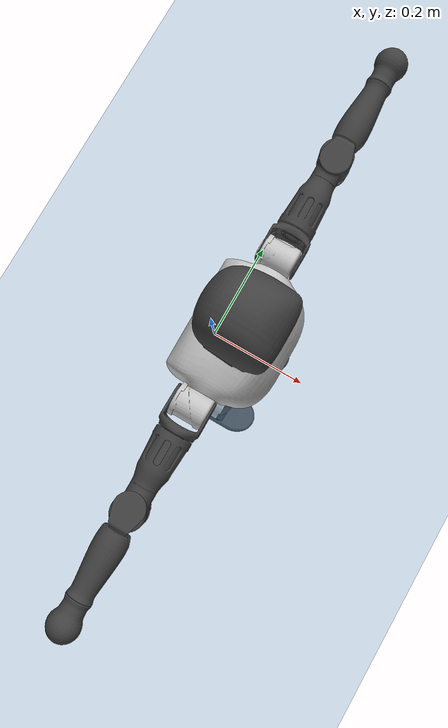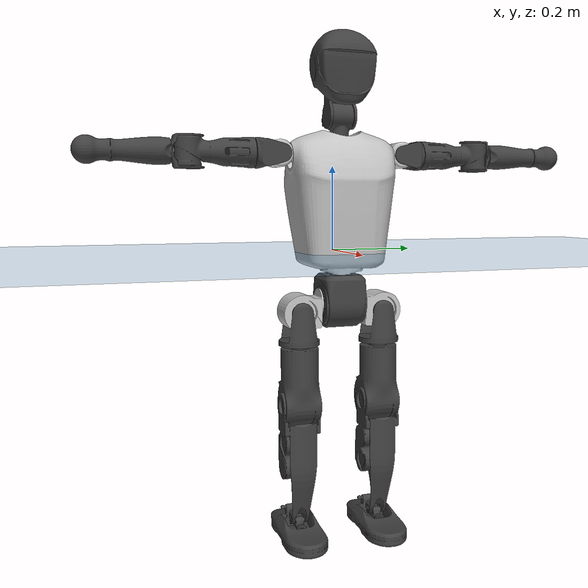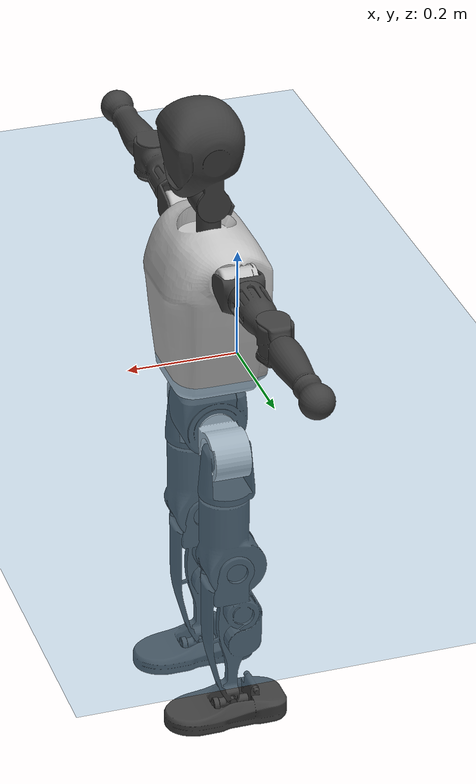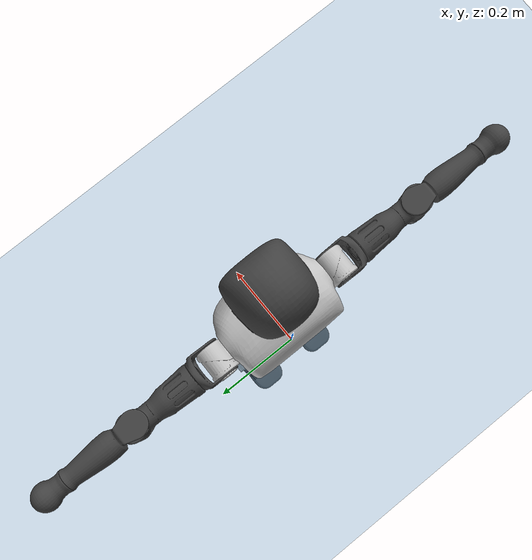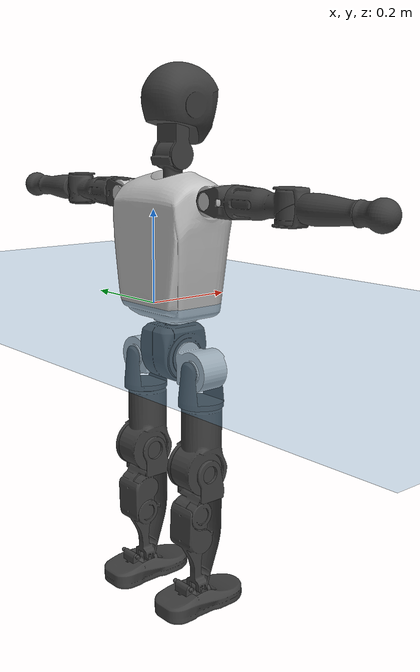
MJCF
<mujoco model="T1">
  <compiler angle="radian" assetdir="assets" balanceinertia="true" inertiafromgeom="false"/>

  <option timestep="0.005" density="1.2" viscosity="2e-05"/>

  <size nkey="1"/>

  <visual>
    <quality shadowsize="8192"/>
    <map shadowclip="0.5"/>
  </visual>

  <default>
    <default class="/">
      <joint armature="0.01" damping="0.01" frictionloss="0.1"/>
      <geom contype="0" conaffinity="0" group="1" solref="-1000 -80"/>
      <site size="0.01 0.005 0.005" group="5"/>
      <general forcelimited="true" biastype="affine" gainprm="25" biasprm="0 -25 -0.6"/>
      <default class="t1">
        <geom rgba="0.25 0.25 0.25 1"/>
        <default class="visual">
          <geom type="mesh" group="2"/>
        </default>
        <default class="collision">
          <geom group="3"/>
        </default>
        <default class="foot">
          <geom size="0.1115 0.05 0.015" type="box" condim="6" group="4" priority="1" solimp="0.015 1 0.015"/>
        </default>
        <default class="reward_collision_sphere">
          <geom group="5" rgba="1 0 0 1"/>
        </default>
      </default>
    </default>
  </default>

  <asset>
    <texture type="skybox" colorspace="auto" name="//unnamed_texture_0" builtin="gradient" rgb1="0.95 0.95 0.95" rgb2="0.95 0.95 0.95" width="100" height="600"/>
    <texture type="2d" colorspace="auto" name="texplane" builtin="checker" rgb1="0.345 0.575 0.748" rgb2="0.345 0.575 0.748" markrgb="1 1 1" width="512" height="512"/>
    <material name="MatPlane" class="/" texture="texplane" texuniform="true" texrepeat="2 2" specular="0.9"/>
    <mesh name="Trunk" class="/" file="Trunk.stl"/>
    <mesh name="H1" class="/" file="H1.stl"/>
    <mesh name="H2" class="/" file="H2.stl"/>
    <mesh name="AL1" class="/" file="AL1.stl"/>
    <mesh name="AL2" class="/" file="AL2.stl"/>
    <mesh name="AL3" class="/" file="AL3.stl"/>
    <mesh name="left_hand_link" class="/" file="left_hand_link.stl"/>
    <mesh name="AR1" class="/" file="AR1.stl"/>
    <mesh name="AR2" class="/" file="AR2.stl"/>
    <mesh name="AR3" class="/" file="AR3.stl"/>
    <mesh name="right_hand_link" class="/" file="right_hand_link.stl"/>
    <mesh name="Waist" class="/" file="Waist.stl"/>
    <mesh name="Hip_Pitch_Left" class="/" file="Hip_Pitch_Left.stl"/>
    <mesh name="Hip_Roll_Left" class="/" file="Hip_Roll_Left.stl"/>
    <mesh name="Hip_Yaw_Left" class="/" file="Hip_Yaw_Left.stl"/>
    <mesh name="Shank_Left" class="/" file="Shank_Left.stl"/>
    <mesh name="Ankle_Cross_Left" class="/" file="Ankle_Cross_Left.stl"/>
    <mesh name="left_foot_link" class="/" file="left_foot_link.stl"/>
    <mesh name="Hip_Pitch_Right" class="/" file="Hip_Pitch_Right.stl"/>
    <mesh name="Hip_Roll_Right" class="/" file="Hip_Roll_Right.stl"/>
    <mesh name="Hip_Yaw_Right" class="/" file="Hip_Yaw_Right.stl"/>
    <mesh name="Shank_Right" class="/" file="Shank_Right.stl"/>
    <mesh name="Ankle_Cross_Right" class="/" file="Ankle_Cross_Right.stl"/>
    <mesh name="right_foot_link" class="/" file="right_foot_link.stl"/>
  </asset>

  <worldbody>
    <geom name="floor" class="/" size="100 100 0.125" type="plane" group="0" material="MatPlane"/>
    <light name="toplight_shadow" class="/" pos="0 0 5" dir="0.0990148 0.0990148 -0.990148" type="directional" ambient="0.04 0.04 0.04" diffuse="0.55 0.55 0.55" specular="0.12 0.12 0.12"/>
    <light name="toplight_fill" class="/" pos="0 0 5" dir="0.0990148 0.0990148 -0.990148" type="directional" castshadow="false" ambient="0.04 0.04 0.04" diffuse="0.3 0.3 0.3" specular="0.08 0.08 0.08"/>
    <body name="trunk" childclass="t1" pos="-0.000247206 -9.83098e-05 -0.000882298" quat="1 -4.74921e-06 2.60555e-06 4.17277e-06">
      <inertial pos="0.0475651 -0.000141755 0.108057" quat="0.999962 0.000669519 -0.00874077 0.000220318" mass="9.86156" diaginertia="0.0413921 0.0574443 0.0642708"/>
      <joint name="//unnamed_joint_0" type="free" armature="0" damping="0" frictionloss="0"/>
      <geom name="//unnamed_geom_1" class="visual" rgba="0.76 0.76 0.76 1" mesh="Trunk"/>
      <geom name="//unnamed_geom_2" class="collision" size="0.0707149 0.0942865 0.14143" pos="0.0513129 0 0.123408" type="box"/>
      <geom name="//unnamed_geom_3" class="reward_collision_sphere" size="0.108429" pos="0.0513129 0 0.10284"/>
      <geom name="//unnamed_geom_4" class="reward_collision_sphere" size="0.014143" pos="0.0513129 0.0803234 0"/>
      <geom name="//unnamed_geom_5" class="reward_collision_sphere" size="0.014143" pos="0.0513129 -0.0803234 0"/>
      <geom name="//unnamed_geom_6" class="reward_collision_sphere" size="0.014143" pos="0.0513129 0.101113 0.185112"/>
      <geom name="//unnamed_geom_7" class="reward_collision_sphere" size="0.014143" pos="0.0513129 -0.101113 0.185112"/>
      <site name="imu" pos="-0.00065251 0.00138528 -0.00023179" size="0.00942865"/>
      <camera name="track" pos="0 -1.88996 0" quat="0.707107 0.707107 0 0" mode="trackcom"/>
      <camera name="ego_camera" pos="0.104336 0 0.431927" quat="-0.5 -0.5 0.5 0.5"/>
      <body name="H1" pos="0.052752 -0.000751657 0.249675" quat="1 2.31868e-05 6.41384e-06 -8.27972e-06">
        <inertial pos="-0.0011541 -0.00193569 0.0591844" quat="0.764316 -0.012358 0.00172332 0.644722" mass="0.372599" diaginertia="0.000110986 0.000168251 0.000171951"/>
        <joint name="AAHead_yaw" pos="0 0 0" axis="-0.0029406 -0.0030517 0.999991" stiffness="0.000875712" range="-1.5635 1.56847" armature="0.00947595" damping="0.00709112" frictionloss="0.0949183"/>
        <geom name="//unnamed_geom_8" class="visual" mesh="H1"/>
        <body name="H2" pos="5.44242e-05 0.000697121 0.0632805" quat="1 0.000177612 0.000147124 -0.000261618">
          <inertial pos="0.00592254 0.00054795 0.101732" quat="0.988571 0.104838 -0.0738821 -0.0792321" mass="0.525082" diaginertia="0.000930607 0.00145139 0.00196106"/>
          <joint name="Head_pitch" pos="0 0 0" axis="-0.000508207 -0.999993 -0.00381078" range="-1.22979 0.366457" armature="0.00923905" damping="0.0106966" frictionloss="0.0942869"/>
          <geom name="//unnamed_geom_9" class="visual" mesh="H2"/>
          <geom name="//unnamed_geom_10" class="collision" size="0.0754292" pos="0.00855216 0 0.113124"/>
          <geom name="//unnamed_geom_11" class="reward_collision_sphere" size="0.0848579" pos="0.0171043 0 0.10284"/>
        </body>
      </body>
      <body name="AL1" pos="0.0504014 0.101502 0.225484" quat="1 0.00030088 0.000414139 -8.04256e-05">
        <inertial pos="-0.000364386 0.0416181 -0.000209064" quat="0.50509 0.495623 -0.504442 0.494753" mass="0.442299" diaginertia="0.000618308 0.000974147 0.000336917"/>
        <joint name="Left_Shoulder_Pitch" pos="0 0 0" axis="-0.000789809 0.999999 0.00100299" range="-3.31473 1.22527" armature="0.00929563" damping="0.00620483" frictionloss="0.0983814"/>
        <geom name="//unnamed_geom_12" class="visual" rgba="0.76 0.76 0.76 1" mesh="AL1"/>
        <body name="AL2" pos="0.00161476 0.0449214 -1.87916e-06" quat="1 -7.58027e-06 -8.36467e-06 5.04364e-06">
          <inertial pos="0.00328712 0.0352533 -0.000600932" quat="0.488805 0.511529 -0.487356 0.511754" mass="0.132065" diaginertia="0.00018172 0.000258019 0.000199225"/>
          <joint name="Left_Shoulder_Roll" pos="0 0 0" axis="-1 -0.00023306 0.000293105" range="-1.57205 1.7409" armature="0.00938586" damping="0.00966373" frictionloss="0.0939777"/>
          <geom name="//unnamed_geom_13" class="visual" mesh="AL2"/>
          <body name="AL3" pos="-3.55567e-05 0.0576047 0.000599615" quat="1 -1.2282e-07 5.22545e-06 -2.30191e-06">
            <inertial pos="-0.00122635 0.0806215 -0.000226986" quat="0.704608 0.709596 0.000932934 -0.00114439" mass="0.851871" diaginertia="0.00593714 0.00951666 0.000708931"/>
            <joint name="Left_Elbow_Pitch" pos="0 0 0" axis="-0.00222211 -0.999997 0.000767801" range="-2.26957 2.25484" armature="0.00911561" damping="0.00314103" frictionloss="0.0982876"/>
            <geom name="//unnamed_geom_14" class="visual" mesh="AL3"/>
            <geom name="//unnamed_geom_15" class="collision" size="0.028286 0.0707149" pos="0 0.0472491 0" quat="0.707105 0.707108 0 0" type="cylinder"/>
            <geom name="//unnamed_geom_16" class="reward_collision_sphere" size="0.0339431"/>
            <body name="left_hand_link" pos="0.00131239 0.138549 -4.51721e-05" quat="1 4.48465e-05 -0.00010668 0.000208571">
              <inertial pos="0.000251198 0.104013 -0.000223136" quat="0.707892 0.70632 -0.000143622 -0.000238715" mass="0.27236" diaginertia="0.00371803 0.00608569 0.000243819"/>
              <joint name="Left_Elbow_Yaw" pos="0 0 0" axis="-0.00714824 0.000468644 0.999974" stiffness="0.00151055" range="-2.43578 -0.00317844" armature="0.00944389" damping="0.010254" frictionloss="0.0981043"/>
              <geom name="//unnamed_geom_17" class="visual" mesh="left_hand_link"/>
              <geom name="//unnamed_geom_18" class="collision" size="0.028286 0.0825007" pos="0 0.122848 0" quat="0.707105 0.707108 0 0" type="cylinder"/>
              <geom name="//unnamed_geom_19" class="reward_collision_sphere" size="0.0471433"/>
              <geom name="//unnamed_geom_20" class="reward_collision_sphere" size="0.0330003" pos="0 0.103948 0"/>
              <geom name="//unnamed_geom_21" class="reward_collision_sphere" size="0.0330003" pos="0 0.203171 0"/>
            </body>
          </body>
        </body>
      </body>
      <body name="AR1" pos="0.0491569 -0.100702 0.22509" quat="1 -4.4181e-05 0.000481966 -1.96485e-06">
        <inertial pos="-0.0010733 -0.0425803 -0.000892701" quat="0.50455 0.493807 -0.503926 0.497637" mass="0.43996" diaginertia="0.000629251 0.000980994 0.000336917"/>
        <joint name="Right_Shoulder_Pitch" pos="0 0 0" axis="0.000679925 -1 0.000254278" range="-1.22786 3.30923" armature="0.00950433" damping="0.00496129" frictionloss="0.0982971"/>
        <geom name="//unnamed_geom_22" class="visual" rgba="0.76 0.76 0.76 1" mesh="AR1"/>
        <body name="AR2" pos="-0.00104491 -0.0439857 0.000223438" quat="1 2.84646e-05 6.74608e-06 -6.28262e-06">
          <inertial pos="0.00331787 -0.0357619 -0.000417246" quat="0.511397 0.488141 -0.511718 0.488197" mass="0.134549" diaginertia="0.00018267 0.000259247 0.000201069"/>
          <joint name="Right_Shoulder_Roll" pos="0 0 0" axis="-0.999993 -0.00232657 0.00303464" stiffness="0.00303791" range="-1.75459 1.57747" armature="0.00976391" damping="0.00310562" frictionloss="0.0954702"/>
          <geom name="//unnamed_geom_23" class="visual" mesh="AR2"/>
          <body name="AR3" pos="-0.000291018 -0.0578663 0.00052494" quat="1 7.94095e-06 6.95155e-06 8.94733e-06">
            <inertial pos="-0.000270166 -0.0807584 -0.000486005" quat="0.709243 0.704955 -0.00191365 0.00302417" mass="0.859151" diaginertia="0.0058374 0.00973198 0.000707035"/>
            <joint name="Right_Elbow_Pitch" pos="0 0 0" axis="0.00075797 0.999998 0.00205653" stiffness="0.000549097" range="-2.28886 2.28412" armature="0.00944953" damping="0.00449135" frictionloss="0.0941098"/>
            <geom name="//unnamed_geom_24" class="visual" mesh="AR3"/>
            <geom name="//unnamed_geom_25" class="collision" size="0.028286 0.0707149" pos="0 -0.0472491 0" quat="0.707105 0.707108 0 0" type="cylinder"/>
            <geom name="//unnamed_geom_26" class="reward_collision_sphere" size="0.0339431"/>
            <body name="right_hand_link" pos="-0.000821559 -0.138899 -0.000606385" quat="1 -0.000102737 -6.41791e-06 0.000131328">
              <inertial pos="-0.00024186 -0.103819 0.0016946" quat="0.705986 0.708225 0.00058626 0.000968668" mass="0.273356" diaginertia="0.00374547 0.00610922 0.00024929"/>
              <joint name="Right_Elbow_Yaw" pos="0 0 0" axis="0.00213929 0.00138407 0.999997" range="0.00298159 2.44103" armature="0.00937434" damping="0.0104353" frictionloss="0.0901372"/>
              <geom name="//unnamed_geom_27" class="visual" mesh="right_hand_link"/>
              <geom name="//unnamed_geom_28" class="collision" size="0.028286 0.0825007" pos="0 -0.122848 0" quat="0.707105 0.707108 0 0" type="cylinder"/>
              <geom name="//unnamed_geom_29" class="reward_collision_sphere" size="0.0471433"/>
              <geom name="//unnamed_geom_30" class="reward_collision_sphere" size="0.0330003" pos="0 -0.103948 0"/>
              <geom name="//unnamed_geom_31" class="reward_collision_sphere" size="0.0330003" pos="0 -0.203171 0"/>
            </body>
          </body>
        </body>
      </body>
      <body name="Waist" pos="0.0535788 -0.00131095 -0.118295" quat="1 0.000130773 0.000158657 -4.85767e-05">
        <inertial pos="0.00116463 -0.00140234 0.00761438" quat="0.983607 0.00108743 -0.180294 0.00317869" mass="2.15085" diaginertia="0.00243818 0.00396392 0.00540613"/>
        <joint name="Waist" pos="0 0 0" axis="-0.000655486 -0.00159855 0.999999" range="-1.56681 1.56631" armature="0.00968175" damping="0.0125375" frictionloss="0.0933762"/>
        <geom name="//unnamed_geom_32" class="visual" mesh="Waist"/>
        <body name="Hip_Pitch_Left" pos="0.000398717 0.0994317 -0.000772102" quat="1 -0.000605187 -0.000128902 0.000105742">
          <inertial pos="0.00164134 -0.00704032 -0.0184541" quat="0.975216 0.220765 0.0146424 0.00133444" mass="0.846836" diaginertia="0.0008218 0.00108901 0.00143948"/>
          <joint name="Left_Hip_Pitch" pos="0 0 0" axis="-0.000131669 1 -0.000145269" stiffness="0.00208581" range="-1.80878 1.57059" armature="0.00980343" damping="0.00976589" frictionloss="0.0958617"/>
          <geom name="//unnamed_geom_33" class="visual" rgba="0.76 0.76 0.76 1" mesh="Hip_Pitch_Left"/>
          <body name="Hip_Roll_Left" pos="0.000654431 0.000224282 -0.0215904" quat="1 2.9065e-05 -0.000191842 -0.000244231">
            <inertial pos="0.000358851 0.000588384 -0.0553648" quat="0.707277 -0.00582267 -0.00517063 0.706894" mass="0.327889" diaginertia="0.000797381 0.00114483 0.000593509"/>
            <joint name="Left_Hip_Roll" pos="0 0 0" axis="-0.999994 0.00287771 -0.00194862" range="-1.57019 0.203197" armature="0.00905271" damping="0.00755559" frictionloss="0.0943823"/>
            <geom name="//unnamed_geom_34" class="visual" mesh="Hip_Roll_Left"/>
            <geom name="//unnamed_geom_35" class="reward_collision_sphere" size="0.0518576"/>
            <body name="Hip_Yaw_Left" pos="0.00134657 -0.00129798 -0.0855119" quat="1 -4.4672e-05 0.000171513 -9.44673e-05">
              <inertial pos="-0.00572423 0.000294551 -0.0918851" quat="0.697027 -0.0353419 -0.030387 0.715529" mass="1.8166" diaginertia="0.0117487 0.019029 0.00298721"/>
              <joint name="Left_Hip_Yaw" pos="0 0 0" axis="0.000128757 -0.000559661 -1" range="-0.999055 1.00672" armature="0.0093964" damping="0.0125209" frictionloss="0.0900882"/>
              <geom name="//unnamed_geom_36" class="visual" mesh="Hip_Yaw_Left"/>
              <geom name="//unnamed_geom_37" class="collision" size="0.0471433 0.0754292" type="cylinder"/>
              <body name="Shank_Left" pos="-0.0109621 0.000563886 -0.137405" quat="1 1.89738e-05 -0.000235182 0.000313494">
                <inertial pos="-0.00510251 0.00123707 -0.128144" quat="0.997616 0.000805931 -0.0237653 0.0647866" mass="1.43345" diaginertia="0.0157789 0.0256243 0.002126"/>
                <joint name="Left_Knee_Pitch" pos="0 0 0" axis="0.0011999 0.999997 -0.00216598" range="-0.00573871 2.34854" armature="0.00906837" damping="0.0139915" frictionloss="0.0941377"/>
                <geom name="//unnamed_geom_38" class="visual" mesh="Shank_Left"/>
                <geom name="//unnamed_geom_39" class="collision" size="0.0471433 0.0707149" pos="0 0 -0.123408" type="cylinder"/>
                <geom name="//unnamed_geom_40" class="reward_collision_sphere" size="0.0612862"/>
                <body name="Ankle_Cross_Left" pos="-0.000767865 0.000569922 -0.287951" quat="1 -0.000131443 9.33659e-05 -0.000132345">
                  <inertial pos="-0.00288043 -0.000204312 -0.00799957" quat="0.441298 0.551742 0.549432 0.44605" mass="0.0622011" diaginertia="1.32249e-05 1.9447e-05 1.31352e-05"/>
                  <joint name="Left_Ankle_Pitch" pos="0 0 0" axis="-0.000293244 1 -0.000359814" range="-0.877075 0.352144" armature="0.0090373" damping="0.00277989" frictionloss="0.0902893"/>
                  <geom name="//unnamed_geom_41" class="visual" mesh="Ankle_Cross_Left"/>
                  <body name="left_foot_link" pos="0.000476554 0.000281542 -0.0123324" quat="1 0.000101424 0.000177229 -3.69272e-05">
                    <inertial pos="-0.000513401 0.000654612 -0.00959732" quat="0.000186992 0.623471 0.000307988 0.781846" mass="0.580369" diaginertia="0.00125502 0.0018164 0.00256522"/>
                    <joint name="Left_Ankle_Roll" pos="0 0 0" axis="-0.999984 -0.00425281 0.00381763" range="-0.438104 0.447796" armature="0.00940682" damping="0.00844714" frictionloss="0.0985334"/>
                    <geom name="//unnamed_geom_42" class="visual" mesh="left_foot_link"/>
                    <geom name="left_foot" class="foot" size="0.102492 0.047435 0.0149724" pos="0.00855216 0 -0.015426"/>
                    <geom name="//unnamed_geom_44" class="reward_collision_sphere" size="0.049029" pos="0.00855216 0 -0.015426"/>
                    <geom name="//unnamed_geom_45" class="reward_collision_sphere" size="0.028286" pos="0.0812455 -0.0217346 -0.015426"/>
                    <geom name="//unnamed_geom_46" class="reward_collision_sphere" size="0.028286" pos="-0.0598651 -0.0217346 -0.015426"/>
                    <site name="left_foot" class="foot" pos="0.00855216 0 -0.015426" size="0.00942865"/>
                  </body>
                </body>
              </body>
            </body>
          </body>
        </body>
        <body name="Hip_Pitch_Right" pos="-0.000512983 -0.0997374 -0.000153741" quat="1 0.000350835 6.83501e-05 0.000223559">
          <inertial pos="0.000477235 0.0071726 -0.0178912" quat="0.973068 -0.229948 0.0157815 -0.00368848" mass="0.852018" diaginertia="0.000819536 0.00108558 0.00142577"/>
          <joint name="Right_Hip_Pitch" pos="0 0 0" axis="-0.00135591 -0.999997 -0.00191928" range="-1.57711 1.81615" armature="0.00947452" damping="0.00819268" frictionloss="0.094841"/>
          <geom name="//unnamed_geom_47" class="visual" rgba="0.76 0.76 0.76 1" mesh="Hip_Pitch_Right"/>
          <body name="Hip_Roll_Right" pos="-0.000930658 3.41323e-05 -0.0204494" quat="1 -5.66208e-06 0.000223686 -6.12748e-05">
            <inertial pos="0.00147379 -0.000963083 -0.0551924" quat="0.705729 -0.00802843 -0.00322401 0.70843" mass="0.327409" diaginertia="0.000800708 0.00114644 0.000598196"/>
            <joint name="Right_Hip_Roll" pos="0 0 0" axis="-0.999998 -0.00155415 -0.000949481" range="-0.209232 1.57432" armature="0.0098288" damping="0.0070311" frictionloss="0.0942466"/>
            <geom name="//unnamed_geom_48" class="visual" mesh="Hip_Roll_Right"/>
            <geom name="//unnamed_geom_49" class="reward_collision_sphere" size="0.0518576"/>
            <body name="Hip_Yaw_Right" pos="0.000623425 0.000815129 -0.0843666" quat="1 -0.000154092 -0.000132768 0.000150018">
              <inertial pos="-0.00488167 -0.000705781 -0.092398" quat="0.712896 -0.0331385 -0.0321739 0.699747" mass="1.81834" diaginertia="0.0118429 0.0191836 0.00299938"/>
              <joint name="Right_Hip_Yaw" pos="0 0 0" axis="0.00398182 -0.00387223 -0.999985" stiffness="0.00234495" range="-1.01114 1.02192" armature="0.00931755" damping="0.0105598" frictionloss="0.0941734"/>
              <geom name="//unnamed_geom_50" class="visual" mesh="Hip_Yaw_Right"/>
              <geom name="//unnamed_geom_51" class="collision" size="0.0471433 0.0754292" type="cylinder"/>
              <body name="Shank_Right" pos="-0.0120265 -0.00102374 -0.138998" quat="1 -2.36124e-05 -3.72713e-05 -9.50842e-06">
                <inertial pos="-0.00462372 0.000225008 -0.125686" quat="0.999244 -0.00317101 -0.0238851 -0.0304942" mass="1.52675" diaginertia="0.0162 0.0263958 0.00227352"/>
                <joint name="Right_Knee_Pitch" pos="0 0 0" axis="-0.00592988 -0.999954 0.00747652" range="-2.343 0.00286597" armature="0.0090324" damping="0.00807251" frictionloss="0.0909795"/>
                <geom name="//unnamed_geom_52" class="visual" mesh="Shank_Right"/>
                <geom name="//unnamed_geom_53" class="collision" size="0.0471433 0.0707149" pos="0 0 -0.123408" type="cylinder"/>
                <geom name="//unnamed_geom_54" class="reward_collision_sphere" size="0.0612862"/>
                <body name="Ankle_Cross_Right" pos="0.00101456 -0.00100789 -0.287922" quat="1 -0.000130323 5.47943e-05 -1.50725e-05">
                  <inertial pos="-0.00362079 0.00018018 -0.00838974" quat="0.442742 0.551276 0.551044 0.443198" mass="0.0609998" diaginertia="1.32651e-05 1.93234e-05 1.30081e-05"/>
                  <joint name="Right_Ankle_Pitch" pos="0 0 0" axis="0.000703912 -1 -0.000641171" stiffness="0.00026533" range="-0.337334 0.875593" armature="0.00957407" damping="0.0039785" frictionloss="0.0939905"/>
                  <geom name="//unnamed_geom_55" class="visual" mesh="Ankle_Cross_Right"/>
                  <body name="right_foot_link" pos="0.000143146 -0.000929566 -0.0118145" quat="1 3.37449e-05 3.18613e-06 0.00030608">
                    <inertial pos="0.000709178 -0.000256238 -0.00942018" quat="0.000586881 0.619952 0.000249557 0.78464" mass="0.574336" diaginertia="0.00123252 0.0018184 0.0025169"/>
                    <joint name="Right_Ankle_Roll" pos="0 0 0" axis="-1 -0.000427196 -0.000559552" range="-0.455532 0.451895" armature="0.00951342" damping="0.00790328" frictionloss="0.0965696"/>
                    <geom name="//unnamed_geom_56" class="visual" mesh="right_foot_link"/>
                    <geom name="right_foot" class="foot" size="0.097805 0.0458385 0.0142625" pos="0.00855216 0 -0.015426"/>
                    <geom name="//unnamed_geom_58" class="reward_collision_sphere" size="0.0377146"/>
                    <geom name="//unnamed_geom_59" class="reward_collision_sphere" size="0.028286" pos="0.00855216 0 -0.015426"/>
                    <geom name="//unnamed_geom_60" class="reward_collision_sphere" size="0.028286" pos="0.0812455 0.0217346 -0.015426"/>
                    <geom name="//unnamed_geom_61" class="reward_collision_sphere" size="0.028286" pos="-0.0598651 0.0217346 -0.015426"/>
                    <site name="right_foot" class="foot" pos="0.00855216 0 -0.015426" size="0.00942865"/>
                  </body>
                </body>
              </body>
            </body>
          </body>
        </body>
      </body>
    </body>
  </worldbody>

  <contact>
    <pair class="/" geom1="floor" geom2="left_foot" name="//unnamed_contact_0"/>
    <pair class="/" geom1="floor" geom2="right_foot" name="//unnamed_contact_1"/>
  </contact>

  <actuator>
    <general name="AAHead_yaw" class="/" joint="AAHead_yaw" forcerange="-6.5404 6.5404" gainprm="23.3575" biasprm="0 -23.3575 -0.559995"/>
    <general name="Head_pitch" class="/" joint="Head_pitch" forcerange="-6.71601 6.71601" gainprm="23.3575" biasprm="0 -23.3575 -0.559995"/>
    <general name="Left_Shoulder_Pitch" class="/" joint="Left_Shoulder_Pitch" forcerange="-16.8435 16.8435" gainprm="23.3575" biasprm="0 -23.3575 -0.559995"/>
    <general name="Left_Shoulder_Roll" class="/" joint="Left_Shoulder_Roll" forcerange="-17.3503 17.3503" gainprm="23.3575" biasprm="0 -23.3575 -0.559995"/>
    <general name="Left_Elbow_Pitch" class="/" joint="Left_Elbow_Pitch" forcerange="-16.8161 16.8161" gainprm="23.3575" biasprm="0 -23.3575 -0.559995"/>
    <general name="Left_Elbow_Yaw" class="/" joint="Left_Elbow_Yaw" forcerange="-16.9792 16.9792" gainprm="23.3575" biasprm="0 -23.3575 -0.559995"/>
    <general name="Right_Shoulder_Pitch" class="/" joint="Right_Shoulder_Pitch" forcerange="-17.1002 17.1002" gainprm="23.3575" biasprm="0 -23.3575 -0.559995"/>
    <general name="Right_Shoulder_Roll" class="/" joint="Right_Shoulder_Roll" forcerange="-17.1446 17.1446" gainprm="23.3575" biasprm="0 -23.3575 -0.559995"/>
    <general name="Right_Elbow_Pitch" class="/" joint="Right_Elbow_Pitch" forcerange="-17.0009 17.0009" gainprm="23.3575" biasprm="0 -23.3575 -0.559995"/>
    <general name="Right_Elbow_Yaw" class="/" joint="Right_Elbow_Yaw" forcerange="-16.7807 16.7807" gainprm="23.3575" biasprm="0 -23.3575 -0.559995"/>
    <general name="Waist" class="/" joint="Waist" forcerange="-28.6102 28.6102" gainprm="23.3575" biasprm="0 -23.3575 -0.559995"/>
    <general name="Left_Hip_Pitch" class="/" joint="Left_Hip_Pitch" forcerange="-42.6463 42.6463" gainprm="23.3575" biasprm="0 -23.3575 -0.559995"/>
    <general name="Left_Hip_Roll" class="/" joint="Left_Hip_Roll" forcerange="-28.2246 28.2246" gainprm="23.3575" biasprm="0 -23.3575 -0.559995"/>
    <general name="Left_Hip_Yaw" class="/" joint="Left_Hip_Yaw" forcerange="-27.9471 27.9471" gainprm="23.3575" biasprm="0 -23.3575 -0.559995"/>
    <general name="Left_Knee_Pitch" class="/" joint="Left_Knee_Pitch" forcerange="-55.3905 55.3905" gainprm="23.3575" biasprm="0 -23.3575 -0.559995"/>
    <general name="Left_Ankle_Pitch" class="/" joint="Left_Ankle_Pitch" forcerange="-18.9771 18.9771" gainprm="23.3575" biasprm="0 -23.3575 -0.559995"/>
    <general name="Left_Ankle_Roll" class="/" joint="Left_Ankle_Roll" forcerange="-14.1857 14.1857" gainprm="23.3575" biasprm="0 -23.3575 -0.559995"/>
    <general name="Right_Hip_Pitch" class="/" joint="Right_Hip_Pitch" forcerange="-42.7789 42.7789" gainprm="23.3575" biasprm="0 -23.3575 -0.559995"/>
    <general name="Right_Hip_Roll" class="/" joint="Right_Hip_Roll" forcerange="-28.1728 28.1728" gainprm="23.3575" biasprm="0 -23.3575 -0.559995"/>
    <general name="Right_Hip_Yaw" class="/" joint="Right_Hip_Yaw" forcerange="-27.581 27.581" gainprm="23.3575" biasprm="0 -23.3575 -0.559995"/>
    <general name="Right_Knee_Pitch" class="/" joint="Right_Knee_Pitch" forcerange="-56.3398 56.3398" gainprm="23.3575" biasprm="0 -23.3575 -0.559995"/>
    <general name="Right_Ankle_Pitch" class="/" joint="Right_Ankle_Pitch" forcerange="-19.1694 19.1694" gainprm="23.3575" biasprm="0 -23.3575 -0.559995"/>
    <general name="Right_Ankle_Roll" class="/" joint="Right_Ankle_Roll" forcerange="-14.1713 14.1713" gainprm="23.3575" biasprm="0 -23.3575 -0.559995"/>
  </actuator>

  <sensor>
    <gyro site="imu" name="imu_angular_velocity"/>
    <velocimeter site="imu" name="imu_linear_velocity"/>
    <framelinvel objtype="site" objname="left_foot" name="left_foot_global_linear_velocity"/>
    <framelinvel objtype="site" objname="right_foot" name="right_foot_global_linear_velocity"/>
  </sensor>

  <keyframe>
    <key name="home" qpos="0 0 0.6385 1 0 0 0 0 0 0 1.4 0 -0.4 0 -1.4 0 0.4 0 -0.4 0 0 0.8 -0.4 0 0.4 0 0 -0.8 0.4 0"/>
  </keyframe>
</mujoco>
